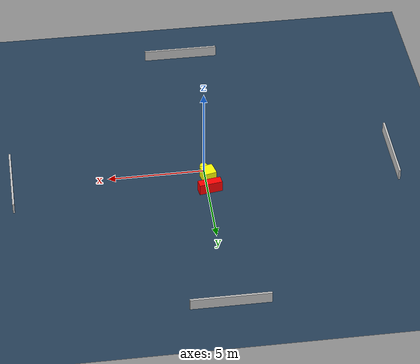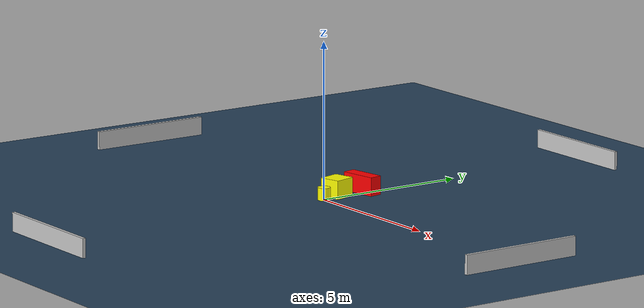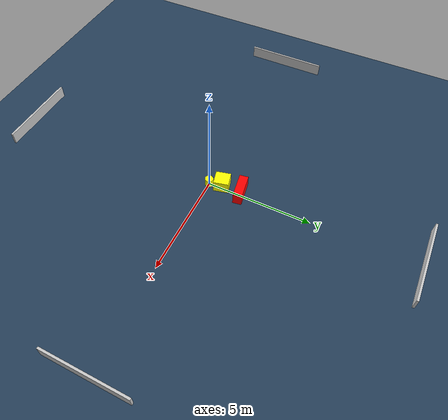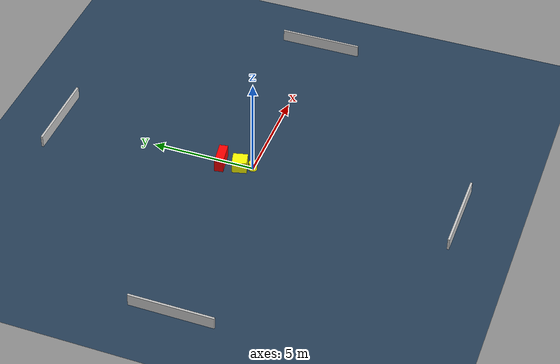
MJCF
<?xml version="1.0" ?>
<mujoco model="generated_environment">
  <option timestep="0.01" integrator="RK4" cone="elliptic"/>
  <default>
    <geom density="1"/>
  </default>
  <asset>
    <texture builtin="gradient" height="3072" name="skybox" rgb1="0.3 0.5 0.7" rgb2="0 0 0" type="skybox" width="512"/>
    <texture builtin="checker" height="300" name="groundplane" rgb1="0.2 0.3 0.4" rgb2="0.1 0.2 0.3" type="2d" width="300"/>
    <material name="groundplane" reflectance="0.2" texrepeat="5 5" texture="groundplane"/>
  </asset>
  <worldbody>
    <light dir="0 0 -1" directional="true" pos="0 0 1.5"/>
    <geom condim="3" friction="0.5 0.005 0.001" material="groundplane" name="floor" pos="0 0 0" size="0 0 0.05" type="plane"/>
    <body name="walls">
      <geom name="wall_1" condim="4" pos="-10.0 0.0 0.3" rgba="0.800000011920929 0.800000011920929 0.800000011920929 1.0" size="0.05 2.0 0.3" type="box"/>
      <geom name="wall_2" condim="4" pos="10.0 0.0 0.3" rgba="0.800000011920929 0.800000011920929 0.800000011920929 1.0" size="0.05 2.0 0.3" type="box"/>
      <geom name="wall_3" condim="4" pos="0.0 -10.0 0.3" rgba="0.800000011920929 0.800000011920929 0.800000011920929 1.0" size="2.0 0.05 0.3" type="box"/>
      <geom name="wall_4" condim="4" pos="0.0 10.0 0.3" rgba="0.800000011920929 0.800000011920929 0.800000011920929 1.0" size="2.0 0.05 0.3" type="box"/>
    </body>
    <body name="robot">
      <joint name="joint_x" type="slide" pos="0 0 0" axis="1 0 0"/>
      <joint name="joint_y" type="slide" pos="0 0 0" axis="0 1 0"/>
      <geom name="robot" type="cylinder" pos="0.0 0.0 0.2" size="0.2 0.2 0.0" mass="5.0" friction="1.0 0.005 0.0001" condim="4" rgba="1.0 1.0 0.0 1.0"/>
    </body>
    <body name="obstacle_1_movable">
      <geom name="obstacle_1_movable" condim="4" pos="-0.15233788937509757 0.6003263888732487 0.3" euler="0 0 13.800389251969696" friction="0.0 0.005 0.001" rgba="1.0 1.0 0.0 1.0" size="0.3424917966305518 0.3551484575064113 0.3" type="box" mass="0.1"/>
      <joint type="free"/>
    </body>
    <body name="obstacle_2_static">
      <geom name="obstacle_2_static" condim="4" pos="-0.12655898016207848 1.5505666881604057 0.3" euler="0 0 189.13920926050884" friction="0.0 0.005 0.001" rgba="1.0 0.0 0.0 1.0" size="0.6038758403326518 0.21050000700287333 0.3" type="box"/>
    </body>
  </worldbody>
  <actuator>
    <motor name="actuator_x" joint="joint_x" gear="1" ctrlrange="-1 1"/>
    <motor name="actuator_y" joint="joint_y" gear="1" ctrlrange="-1 1"/>
  </actuator>
</mujoco>
